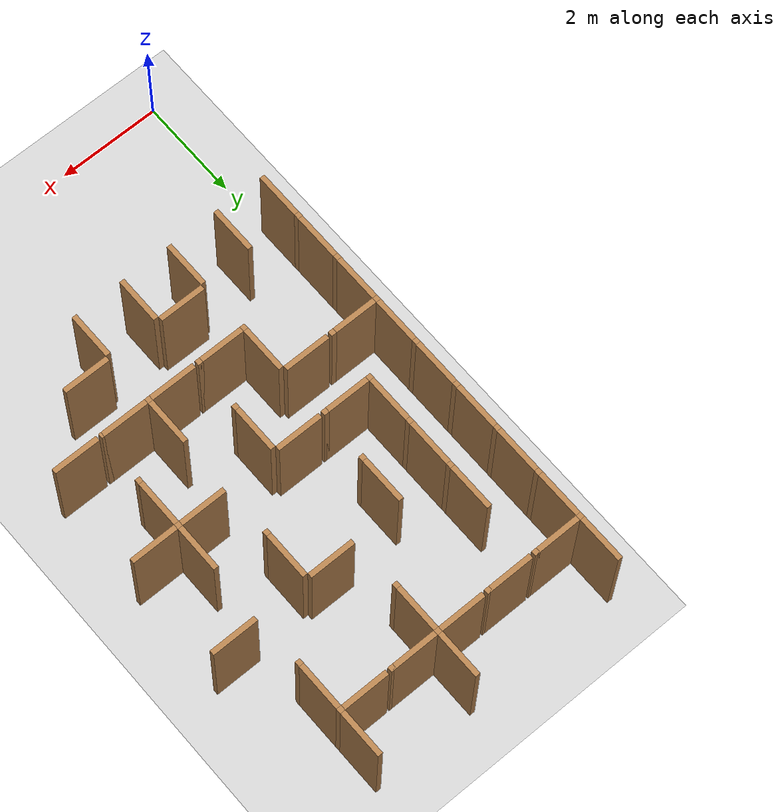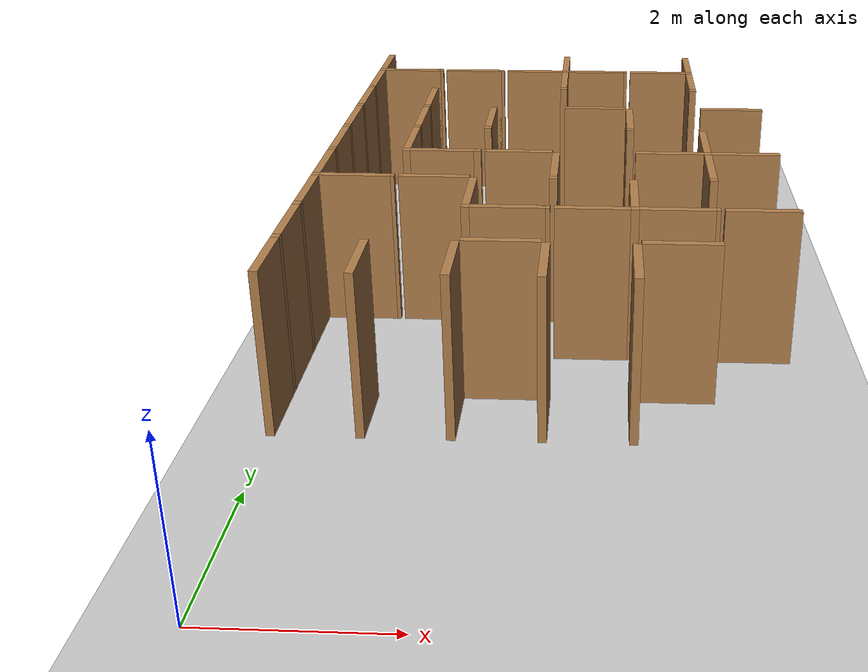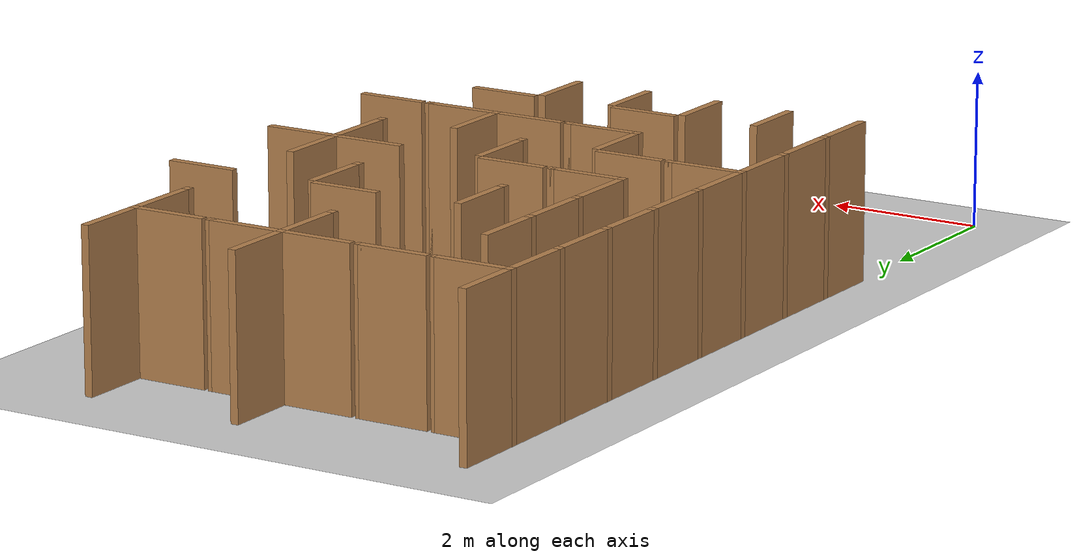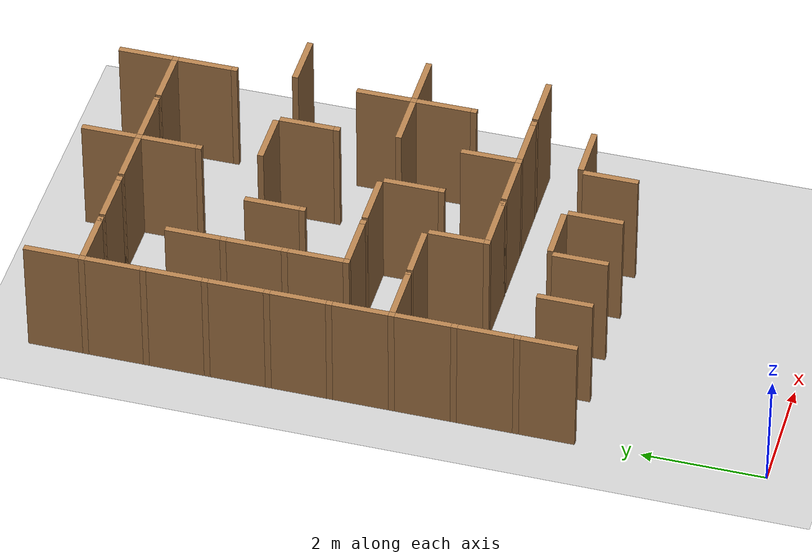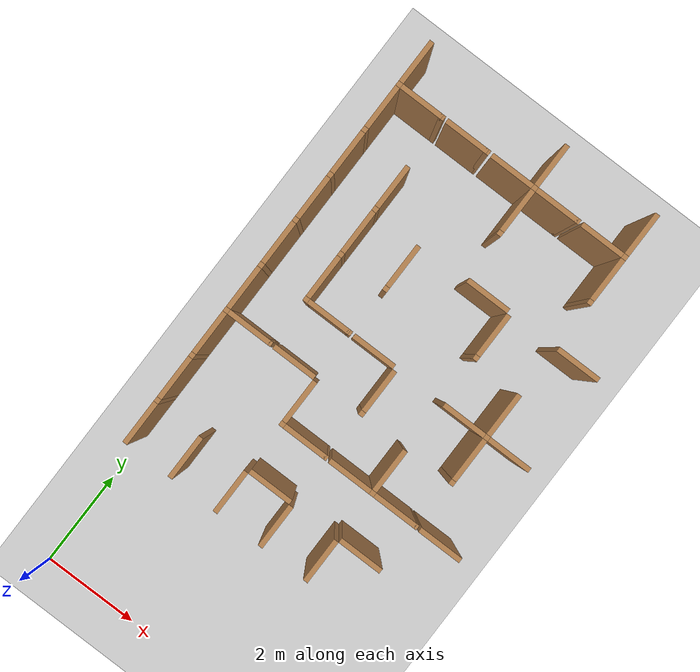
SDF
<sdf version="1.6">
 <world name="default">
  <include><uri>model://sun</uri></include>
  <model name="ground_plane">
   <static>true</static>
   <link name="link">
    <collision name="collision"><geometry><plane><size>12.0 12.0</size></plane></geometry></collision>
    <visual name="visual">
     <cast_shadows>false</cast_shadows>
     <geometry><plane><size>12.0 12.0</size></plane></geometry>
     <material>
      <script><uri>file://media/materials/scripts/gazebo.material</uri><name>Gazebo/Grey</name></script>
     </material>
    </visual>
   </link>
   <pose>6.0 6.0 0 0 0 0</pose>
  </model>
  <model name="vwall_3_0">
   <pose>0.0 3.5 1.0 0 0 0</pose>
   <link name="link">
    <collision name="collision"><geometry><box><size>0.1 0.9 2</size></box></geometry></collision>
    <visual name="visual">
     <geometry><box><size>0.1 0.9 2</size></box></geometry>
     <material>
      <script><uri>file://media/materials/scripts/gazebo.material</uri><name>Gazebo/Wood</name></script>
     </material>
    </visual>
   </link>
  </model>
  <model name="vwall_3_1">
   <pose>1.0 3.5 1.0 0 0 0</pose>
   <link name="link">
    <collision name="collision"><geometry><box><size>0.1 0.9 2</size></box></geometry></collision>
    <visual name="visual">
     <geometry><box><size>0.1 0.9 2</size></box></geometry>
     <material>
      <script><uri>file://media/materials/scripts/gazebo.material</uri><name>Gazebo/Wood</name></script>
     </material>
    </visual>
   </link>
  </model>
  <model name="vwall_3_2">
   <pose>2.0 3.5 1.0 0 0 0</pose>
   <link name="link">
    <collision name="collision"><geometry><box><size>0.1 0.9 2</size></box></geometry></collision>
    <visual name="visual">
     <geometry><box><size>0.1 0.9 2</size></box></geometry>
     <material>
      <script><uri>file://media/materials/scripts/gazebo.material</uri><name>Gazebo/Wood</name></script>
     </material>
    </visual>
   </link>
  </model>
  <model name="vwall_3_3">
   <pose>3.0 3.5 1.0 0 0 0</pose>
   <link name="link">
    <collision name="collision"><geometry><box><size>0.1 0.9 2</size></box></geometry></collision>
    <visual name="visual">
     <geometry><box><size>0.1 0.9 2</size></box></geometry>
     <material>
      <script><uri>file://media/materials/scripts/gazebo.material</uri><name>Gazebo/Wood</name></script>
     </material>
    </visual>
   </link>
  </model>
  <model name="vwall_3_4">
   <pose>4.0 3.5 1.0 0 0 0</pose>
   <link name="link">
    <collision name="collision"><geometry><box><size>0.1 0.9 2</size></box></geometry></collision>
    <visual name="visual">
     <geometry><box><size>0.1 0.9 2</size></box></geometry>
     <material>
      <script><uri>file://media/materials/scripts/gazebo.material</uri><name>Gazebo/Wood</name></script>
     </material>
    </visual>
   </link>
  </model>
  <model name="vwall_4_0">
   <pose>0.0 4.5 1.0 0 0 0</pose>
   <link name="link">
    <collision name="collision"><geometry><box><size>0.1 0.9 2</size></box></geometry></collision>
    <visual name="visual">
     <geometry><box><size>0.1 0.9 2</size></box></geometry>
     <material>
      <script><uri>file://media/materials/scripts/gazebo.material</uri><name>Gazebo/Wood</name></script>
     </material>
    </visual>
   </link>
  </model>
  <model name="joint_0.0_4.0">
   <pose>0.0 4.0 1.0 0 0 0</pose>
   <link name="link">
    <collision name="collision"><geometry><box><size>0.1 0.1 2</size></box></geometry></collision>
    <visual name="visual">
     <geometry><box><size>0.1 0.1 2</size></box></geometry>
     <material>
      <script><uri>file://media/materials/scripts/gazebo.material</uri><name>Gazebo/Wood</name></script>
     </material>
    </visual>
   </link>
  </model>
  <model name="vwall_5_0">
   <pose>0.0 5.5 1.0 0 0 0</pose>
   <link name="link">
    <collision name="collision"><geometry><box><size>0.1 0.9 2</size></box></geometry></collision>
    <visual name="visual">
     <geometry><box><size>0.1 0.9 2</size></box></geometry>
     <material>
      <script><uri>file://media/materials/scripts/gazebo.material</uri><name>Gazebo/Wood</name></script>
     </material>
    </visual>
   </link>
  </model>
  <model name="joint_0.0_5.0">
   <pose>0.0 5.0 1.0 0 0 0</pose>
   <link name="link">
    <collision name="collision"><geometry><box><size>0.1 0.1 2</size></box></geometry></collision>
    <visual name="visual">
     <geometry><box><size>0.1 0.1 2</size></box></geometry>
     <material>
      <script><uri>file://media/materials/scripts/gazebo.material</uri><name>Gazebo/Wood</name></script>
     </material>
    </visual>
   </link>
  </model>
  <model name="vwall_5_2">
   <pose>2.0 5.5 1.0 0 0 0</pose>
   <link name="link">
    <collision name="collision"><geometry><box><size>0.1 0.9 2</size></box></geometry></collision>
    <visual name="visual">
     <geometry><box><size>0.1 0.9 2</size></box></geometry>
     <material>
      <script><uri>file://media/materials/scripts/gazebo.material</uri><name>Gazebo/Wood</name></script>
     </material>
    </visual>
   </link>
  </model>
  <model name="joint_2.0_5.0">
   <pose>2.0 5.0 1.0 0 0 0</pose>
   <link name="link">
    <collision name="collision"><geometry><box><size>0.1 0.1 2</size></box></geometry></collision>
    <visual name="visual">
     <geometry><box><size>0.1 0.1 2</size></box></geometry>
     <material>
      <script><uri>file://media/materials/scripts/gazebo.material</uri><name>Gazebo/Wood</name></script>
     </material>
    </visual>
   </link>
  </model>
  <model name="vwall_5_4">
   <pose>4.0 5.5 1.0 0 0 0</pose>
   <link name="link">
    <collision name="collision"><geometry><box><size>0.1 0.9 2</size></box></geometry></collision>
    <visual name="visual">
     <geometry><box><size>0.1 0.9 2</size></box></geometry>
     <material>
      <script><uri>file://media/materials/scripts/gazebo.material</uri><name>Gazebo/Wood</name></script>
     </material>
    </visual>
   </link>
  </model>
  <model name="joint_4.0_5.0">
   <pose>4.0 5.0 1.0 0 0 0</pose>
   <link name="link">
    <collision name="collision"><geometry><box><size>0.1 0.1 2</size></box></geometry></collision>
    <visual name="visual">
     <geometry><box><size>0.1 0.1 2</size></box></geometry>
     <material>
      <script><uri>file://media/materials/scripts/gazebo.material</uri><name>Gazebo/Wood</name></script>
     </material>
    </visual>
   </link>
  </model>
  <model name="vwall_6_0">
   <pose>0.0 6.5 1.0 0 0 0</pose>
   <link name="link">
    <collision name="collision"><geometry><box><size>0.1 0.9 2</size></box></geometry></collision>
    <visual name="visual">
     <geometry><box><size>0.1 0.9 2</size></box></geometry>
     <material>
      <script><uri>file://media/materials/scripts/gazebo.material</uri><name>Gazebo/Wood</name></script>
     </material>
    </visual>
   </link>
  </model>
  <model name="joint_0.0_6.0">
   <pose>0.0 6.0 1.0 0 0 0</pose>
   <link name="link">
    <collision name="collision"><geometry><box><size>0.1 0.1 2</size></box></geometry></collision>
    <visual name="visual">
     <geometry><box><size>0.1 0.1 2</size></box></geometry>
     <material>
      <script><uri>file://media/materials/scripts/gazebo.material</uri><name>Gazebo/Wood</name></script>
     </material>
    </visual>
   </link>
  </model>
  <model name="vwall_6_3">
   <pose>3.0 6.5 1.0 0 0 0</pose>
   <link name="link">
    <collision name="collision"><geometry><box><size>0.1 0.9 2</size></box></geometry></collision>
    <visual name="visual">
     <geometry><box><size>0.1 0.9 2</size></box></geometry>
     <material>
      <script><uri>file://media/materials/scripts/gazebo.material</uri><name>Gazebo/Wood</name></script>
     </material>
    </visual>
   </link>
  </model>
  <model name="joint_3.0_6.0">
   <pose>3.0 6.0 1.0 0 0 0</pose>
   <link name="link">
    <collision name="collision"><geometry><box><size>0.1 0.1 2</size></box></geometry></collision>
    <visual name="visual">
     <geometry><box><size>0.1 0.1 2</size></box></geometry>
     <material>
      <script><uri>file://media/materials/scripts/gazebo.material</uri><name>Gazebo/Wood</name></script>
     </material>
    </visual>
   </link>
  </model>
  <model name="vwall_6_5">
   <pose>5.0 6.5 1.0 0 0 0</pose>
   <link name="link">
    <collision name="collision"><geometry><box><size>0.1 0.9 2</size></box></geometry></collision>
    <visual name="visual">
     <geometry><box><size>0.1 0.9 2</size></box></geometry>
     <material>
      <script><uri>file://media/materials/scripts/gazebo.material</uri><name>Gazebo/Wood</name></script>
     </material>
    </visual>
   </link>
  </model>
  <model name="joint_5.0_6.0">
   <pose>5.0 6.0 1.0 0 0 0</pose>
   <link name="link">
    <collision name="collision"><geometry><box><size>0.1 0.1 2</size></box></geometry></collision>
    <visual name="visual">
     <geometry><box><size>0.1 0.1 2</size></box></geometry>
     <material>
      <script><uri>file://media/materials/scripts/gazebo.material</uri><name>Gazebo/Wood</name></script>
     </material>
    </visual>
   </link>
  </model>
  <model name="vwall_7_0">
   <pose>0.0 7.5 1.0 0 0 0</pose>
   <link name="link">
    <collision name="collision"><geometry><box><size>0.1 0.9 2</size></box></geometry></collision>
    <visual name="visual">
     <geometry><box><size>0.1 0.9 2</size></box></geometry>
     <material>
      <script><uri>file://media/materials/scripts/gazebo.material</uri><name>Gazebo/Wood</name></script>
     </material>
    </visual>
   </link>
  </model>
  <model name="joint_0.0_7.0">
   <pose>0.0 7.0 1.0 0 0 0</pose>
   <link name="link">
    <collision name="collision"><geometry><box><size>0.1 0.1 2</size></box></geometry></collision>
    <visual name="visual">
     <geometry><box><size>0.1 0.1 2</size></box></geometry>
     <material>
      <script><uri>file://media/materials/scripts/gazebo.material</uri><name>Gazebo/Wood</name></script>
     </material>
    </visual>
   </link>
  </model>
  <model name="vwall_7_1">
   <pose>1.0 7.5 1.0 0 0 0</pose>
   <link name="link">
    <collision name="collision"><geometry><box><size>0.1 0.9 2</size></box></geometry></collision>
    <visual name="visual">
     <geometry><box><size>0.1 0.9 2</size></box></geometry>
     <material>
      <script><uri>file://media/materials/scripts/gazebo.material</uri><name>Gazebo/Wood</name></script>
     </material>
    </visual>
   </link>
  </model>
  <model name="joint_1.0_7.0">
   <pose>1.0 7.0 1.0 0 0 0</pose>
   <link name="link">
    <collision name="collision"><geometry><box><size>0.1 0.1 2</size></box></geometry></collision>
    <visual name="visual">
     <geometry><box><size>0.1 0.1 2</size></box></geometry>
     <material>
      <script><uri>file://media/materials/scripts/gazebo.material</uri><name>Gazebo/Wood</name></script>
     </material>
    </visual>
   </link>
  </model>
  <model name="vwall_7_5">
   <pose>5.0 7.5 1.0 0 0 0</pose>
   <link name="link">
    <collision name="collision"><geometry><box><size>0.1 0.9 2</size></box></geometry></collision>
    <visual name="visual">
     <geometry><box><size>0.1 0.9 2</size></box></geometry>
     <material>
      <script><uri>file://media/materials/scripts/gazebo.material</uri><name>Gazebo/Wood</name></script>
     </material>
    </visual>
   </link>
  </model>
  <model name="joint_5.0_7.0">
   <pose>5.0 7.0 1.0 0 0 0</pose>
   <link name="link">
    <collision name="collision"><geometry><box><size>0.1 0.1 2</size></box></geometry></collision>
    <visual name="visual">
     <geometry><box><size>0.1 0.1 2</size></box></geometry>
     <material>
      <script><uri>file://media/materials/scripts/gazebo.material</uri><name>Gazebo/Wood</name></script>
     </material>
    </visual>
   </link>
  </model>
  <model name="vwall_8_0">
   <pose>0.0 8.5 1.0 0 0 0</pose>
   <link name="link">
    <collision name="collision"><geometry><box><size>0.1 0.9 2</size></box></geometry></collision>
    <visual name="visual">
     <geometry><box><size>0.1 0.9 2</size></box></geometry>
     <material>
      <script><uri>file://media/materials/scripts/gazebo.material</uri><name>Gazebo/Wood</name></script>
     </material>
    </visual>
   </link>
  </model>
  <model name="joint_0.0_8.0">
   <pose>0.0 8.0 1.0 0 0 0</pose>
   <link name="link">
    <collision name="collision"><geometry><box><size>0.1 0.1 2</size></box></geometry></collision>
    <visual name="visual">
     <geometry><box><size>0.1 0.1 2</size></box></geometry>
     <material>
      <script><uri>file://media/materials/scripts/gazebo.material</uri><name>Gazebo/Wood</name></script>
     </material>
    </visual>
   </link>
  </model>
  <model name="vwall_8_1">
   <pose>1.0 8.5 1.0 0 0 0</pose>
   <link name="link">
    <collision name="collision"><geometry><box><size>0.1 0.9 2</size></box></geometry></collision>
    <visual name="visual">
     <geometry><box><size>0.1 0.9 2</size></box></geometry>
     <material>
      <script><uri>file://media/materials/scripts/gazebo.material</uri><name>Gazebo/Wood</name></script>
     </material>
    </visual>
   </link>
  </model>
  <model name="joint_1.0_8.0">
   <pose>1.0 8.0 1.0 0 0 0</pose>
   <link name="link">
    <collision name="collision"><geometry><box><size>0.1 0.1 2</size></box></geometry></collision>
    <visual name="visual">
     <geometry><box><size>0.1 0.1 2</size></box></geometry>
     <material>
      <script><uri>file://media/materials/scripts/gazebo.material</uri><name>Gazebo/Wood</name></script>
     </material>
    </visual>
   </link>
  </model>
  <model name="vwall_8_2">
   <pose>2.0 8.5 1.0 0 0 0</pose>
   <link name="link">
    <collision name="collision"><geometry><box><size>0.1 0.9 2</size></box></geometry></collision>
    <visual name="visual">
     <geometry><box><size>0.1 0.9 2</size></box></geometry>
     <material>
      <script><uri>file://media/materials/scripts/gazebo.material</uri><name>Gazebo/Wood</name></script>
     </material>
    </visual>
   </link>
  </model>
  <model name="joint_2.0_8.0">
   <pose>2.0 8.0 1.0 0 0 0</pose>
   <link name="link">
    <collision name="collision"><geometry><box><size>0.1 0.1 2</size></box></geometry></collision>
    <visual name="visual">
     <geometry><box><size>0.1 0.1 2</size></box></geometry>
     <material>
      <script><uri>file://media/materials/scripts/gazebo.material</uri><name>Gazebo/Wood</name></script>
     </material>
    </visual>
   </link>
  </model>
  <model name="vwall_8_4">
   <pose>4.0 8.5 1.0 0 0 0</pose>
   <link name="link">
    <collision name="collision"><geometry><box><size>0.1 0.9 2</size></box></geometry></collision>
    <visual name="visual">
     <geometry><box><size>0.1 0.9 2</size></box></geometry>
     <material>
      <script><uri>file://media/materials/scripts/gazebo.material</uri><name>Gazebo/Wood</name></script>
     </material>
    </visual>
   </link>
  </model>
  <model name="joint_4.0_8.0">
   <pose>4.0 8.0 1.0 0 0 0</pose>
   <link name="link">
    <collision name="collision"><geometry><box><size>0.1 0.1 2</size></box></geometry></collision>
    <visual name="visual">
     <geometry><box><size>0.1 0.1 2</size></box></geometry>
     <material>
      <script><uri>file://media/materials/scripts/gazebo.material</uri><name>Gazebo/Wood</name></script>
     </material>
    </visual>
   </link>
  </model>
  <model name="vwall_9_0">
   <pose>0.0 9.5 1.0 0 0 0</pose>
   <link name="link">
    <collision name="collision"><geometry><box><size>0.1 0.9 2</size></box></geometry></collision>
    <visual name="visual">
     <geometry><box><size>0.1 0.9 2</size></box></geometry>
     <material>
      <script><uri>file://media/materials/scripts/gazebo.material</uri><name>Gazebo/Wood</name></script>
     </material>
    </visual>
   </link>
  </model>
  <model name="joint_0.0_9.0">
   <pose>0.0 9.0 1.0 0 0 0</pose>
   <link name="link">
    <collision name="collision"><geometry><box><size>0.1 0.1 2</size></box></geometry></collision>
    <visual name="visual">
     <geometry><box><size>0.1 0.1 2</size></box></geometry>
     <material>
      <script><uri>file://media/materials/scripts/gazebo.material</uri><name>Gazebo/Wood</name></script>
     </material>
    </visual>
   </link>
  </model>
  <model name="vwall_9_1">
   <pose>1.0 9.5 1.0 0 0 0</pose>
   <link name="link">
    <collision name="collision"><geometry><box><size>0.1 0.9 2</size></box></geometry></collision>
    <visual name="visual">
     <geometry><box><size>0.1 0.9 2</size></box></geometry>
     <material>
      <script><uri>file://media/materials/scripts/gazebo.material</uri><name>Gazebo/Wood</name></script>
     </material>
    </visual>
   </link>
  </model>
  <model name="joint_1.0_9.0">
   <pose>1.0 9.0 1.0 0 0 0</pose>
   <link name="link">
    <collision name="collision"><geometry><box><size>0.1 0.1 2</size></box></geometry></collision>
    <visual name="visual">
     <geometry><box><size>0.1 0.1 2</size></box></geometry>
     <material>
      <script><uri>file://media/materials/scripts/gazebo.material</uri><name>Gazebo/Wood</name></script>
     </material>
    </visual>
   </link>
  </model>
  <model name="vwall_10_0">
   <pose>0.0 10.5 1.0 0 0 0</pose>
   <link name="link">
    <collision name="collision"><geometry><box><size>0.1 0.9 2</size></box></geometry></collision>
    <visual name="visual">
     <geometry><box><size>0.1 0.9 2</size></box></geometry>
     <material>
      <script><uri>file://media/materials/scripts/gazebo.material</uri><name>Gazebo/Wood</name></script>
     </material>
    </visual>
   </link>
  </model>
  <model name="joint_0.0_10.0">
   <pose>0.0 10.0 1.0 0 0 0</pose>
   <link name="link">
    <collision name="collision"><geometry><box><size>0.1 0.1 2</size></box></geometry></collision>
    <visual name="visual">
     <geometry><box><size>0.1 0.1 2</size></box></geometry>
     <material>
      <script><uri>file://media/materials/scripts/gazebo.material</uri><name>Gazebo/Wood</name></script>
     </material>
    </visual>
   </link>
  </model>
  <model name="vwall_10_3">
   <pose>3.0 10.5 1.0 0 0 0</pose>
   <link name="link">
    <collision name="collision"><geometry><box><size>0.1 0.9 2</size></box></geometry></collision>
    <visual name="visual">
     <geometry><box><size>0.1 0.9 2</size></box></geometry>
     <material>
      <script><uri>file://media/materials/scripts/gazebo.material</uri><name>Gazebo/Wood</name></script>
     </material>
    </visual>
   </link>
  </model>
  <model name="joint_3.0_10.0">
   <pose>3.0 10.0 1.0 0 0 0</pose>
   <link name="link">
    <collision name="collision"><geometry><box><size>0.1 0.1 2</size></box></geometry></collision>
    <visual name="visual">
     <geometry><box><size>0.1 0.1 2</size></box></geometry>
     <material>
      <script><uri>file://media/materials/scripts/gazebo.material</uri><name>Gazebo/Wood</name></script>
     </material>
    </visual>
   </link>
  </model>
  <model name="vwall_10_5">
   <pose>5.0 10.5 1.0 0 0 0</pose>
   <link name="link">
    <collision name="collision"><geometry><box><size>0.1 0.9 2</size></box></geometry></collision>
    <visual name="visual">
     <geometry><box><size>0.1 0.9 2</size></box></geometry>
     <material>
      <script><uri>file://media/materials/scripts/gazebo.material</uri><name>Gazebo/Wood</name></script>
     </material>
    </visual>
   </link>
  </model>
  <model name="joint_5.0_10.0">
   <pose>5.0 10.0 1.0 0 0 0</pose>
   <link name="link">
    <collision name="collision"><geometry><box><size>0.1 0.1 2</size></box></geometry></collision>
    <visual name="visual">
     <geometry><box><size>0.1 0.1 2</size></box></geometry>
     <material>
      <script><uri>file://media/materials/scripts/gazebo.material</uri><name>Gazebo/Wood</name></script>
     </material>
    </visual>
   </link>
  </model>
  <model name="vwall_11_0">
   <pose>0.0 11.5 1.0 0 0 0</pose>
   <link name="link">
    <collision name="collision"><geometry><box><size>0.1 0.9 2</size></box></geometry></collision>
    <visual name="visual">
     <geometry><box><size>0.1 0.9 2</size></box></geometry>
     <material>
      <script><uri>file://media/materials/scripts/gazebo.material</uri><name>Gazebo/Wood</name></script>
     </material>
    </visual>
   </link>
  </model>
  <model name="joint_0.0_11.0">
   <pose>0.0 11.0 1.0 0 0 0</pose>
   <link name="link">
    <collision name="collision"><geometry><box><size>0.1 0.1 2</size></box></geometry></collision>
    <visual name="visual">
     <geometry><box><size>0.1 0.1 2</size></box></geometry>
     <material>
      <script><uri>file://media/materials/scripts/gazebo.material</uri><name>Gazebo/Wood</name></script>
     </material>
    </visual>
   </link>
  </model>
  <model name="vwall_11_3">
   <pose>3.0 11.5 1.0 0 0 0</pose>
   <link name="link">
    <collision name="collision"><geometry><box><size>0.1 0.9 2</size></box></geometry></collision>
    <visual name="visual">
     <geometry><box><size>0.1 0.9 2</size></box></geometry>
     <material>
      <script><uri>file://media/materials/scripts/gazebo.material</uri><name>Gazebo/Wood</name></script>
     </material>
    </visual>
   </link>
  </model>
  <model name="joint_3.0_11.0">
   <pose>3.0 11.0 1.0 0 0 0</pose>
   <link name="link">
    <collision name="collision"><geometry><box><size>0.1 0.1 2</size></box></geometry></collision>
    <visual name="visual">
     <geometry><box><size>0.1 0.1 2</size></box></geometry>
     <material>
      <script><uri>file://media/materials/scripts/gazebo.material</uri><name>Gazebo/Wood</name></script>
     </material>
    </visual>
   </link>
  </model>
  <model name="vwall_11_5">
   <pose>5.0 11.5 1.0 0 0 0</pose>
   <link name="link">
    <collision name="collision"><geometry><box><size>0.1 0.9 2</size></box></geometry></collision>
    <visual name="visual">
     <geometry><box><size>0.1 0.9 2</size></box></geometry>
     <material>
      <script><uri>file://media/materials/scripts/gazebo.material</uri><name>Gazebo/Wood</name></script>
     </material>
    </visual>
   </link>
  </model>
  <model name="joint_5.0_11.0">
   <pose>5.0 11.0 1.0 0 0 0</pose>
   <link name="link">
    <collision name="collision"><geometry><box><size>0.1 0.1 2</size></box></geometry></collision>
    <visual name="visual">
     <geometry><box><size>0.1 0.1 2</size></box></geometry>
     <material>
      <script><uri>file://media/materials/scripts/gazebo.material</uri><name>Gazebo/Wood</name></script>
     </material>
    </visual>
   </link>
  </model>
  <model name="hwall_4_2">
   <pose>2.5 4.0 1.0 0 0 0</pose>
   <link name="link">
    <collision name="collision"><geometry><box><size>0.9 0.1 2</size></box></geometry></collision>
    <visual name="visual">
     <geometry><box><size>0.9 0.1 2</size></box></geometry>
     <material>
      <script><uri>file://media/materials/scripts/gazebo.material</uri><name>Gazebo/Wood</name></script>
     </material>
    </visual>
   </link>
  </model>
  <model name="hwall_4_4">
   <pose>4.5 4.0 1.0 0 0 0</pose>
   <link name="link">
    <collision name="collision"><geometry><box><size>0.9 0.1 2</size></box></geometry></collision>
    <visual name="visual">
     <geometry><box><size>0.9 0.1 2</size></box></geometry>
     <material>
      <script><uri>file://media/materials/scripts/gazebo.material</uri><name>Gazebo/Wood</name></script>
     </material>
    </visual>
   </link>
  </model>
  <model name="hwall_5_2">
   <pose>2.5 5.0 1.0 0 0 0</pose>
   <link name="link">
    <collision name="collision"><geometry><box><size>0.9 0.1 2</size></box></geometry></collision>
    <visual name="visual">
     <geometry><box><size>0.9 0.1 2</size></box></geometry>
     <material>
      <script><uri>file://media/materials/scripts/gazebo.material</uri><name>Gazebo/Wood</name></script>
     </material>
    </visual>
   </link>
  </model>
  <model name="joint_2.95_5.0">
   <pose>2.95 5.0 1.0 0 0 0</pose>
   <link name="link">
    <collision name="collision"><geometry><box><size>0.1 0.1 2</size></box></geometry></collision>
    <visual name="visual">
     <geometry><box><size>0.1 0.1 2</size></box></geometry>
     <material>
      <script><uri>file://media/materials/scripts/gazebo.material</uri><name>Gazebo/Wood</name></script>
     </material>
    </visual>
   </link>
  </model>
  <model name="hwall_5_3">
   <pose>3.5 5.0 1.0 0 0 0</pose>
   <link name="link">
    <collision name="collision"><geometry><box><size>0.9 0.1 2</size></box></geometry></collision>
    <visual name="visual">
     <geometry><box><size>0.9 0.1 2</size></box></geometry>
     <material>
      <script><uri>file://media/materials/scripts/gazebo.material</uri><name>Gazebo/Wood</name></script>
     </material>
    </visual>
   </link>
  </model>
  <model name="hwall_5_4">
   <pose>4.5 5.0 1.0 0 0 0</pose>
   <link name="link">
    <collision name="collision"><geometry><box><size>0.9 0.1 2</size></box></geometry></collision>
    <visual name="visual">
     <geometry><box><size>0.9 0.1 2</size></box></geometry>
     <material>
      <script><uri>file://media/materials/scripts/gazebo.material</uri><name>Gazebo/Wood</name></script>
     </material>
    </visual>
   </link>
  </model>
  <model name="joint_4.95_5.0">
   <pose>4.95 5.0 1.0 0 0 0</pose>
   <link name="link">
    <collision name="collision"><geometry><box><size>0.1 0.1 2</size></box></geometry></collision>
    <visual name="visual">
     <geometry><box><size>0.1 0.1 2</size></box></geometry>
     <material>
      <script><uri>file://media/materials/scripts/gazebo.material</uri><name>Gazebo/Wood</name></script>
     </material>
    </visual>
   </link>
  </model>
  <model name="hwall_5_5">
   <pose>5.5 5.0 1.0 0 0 0</pose>
   <link name="link">
    <collision name="collision"><geometry><box><size>0.9 0.1 2</size></box></geometry></collision>
    <visual name="visual">
     <geometry><box><size>0.9 0.1 2</size></box></geometry>
     <material>
      <script><uri>file://media/materials/scripts/gazebo.material</uri><name>Gazebo/Wood</name></script>
     </material>
    </visual>
   </link>
  </model>
  <model name="hwall_6_0">
   <pose>0.5 6.0 1.0 0 0 0</pose>
   <link name="link">
    <collision name="collision"><geometry><box><size>0.9 0.1 2</size></box></geometry></collision>
    <visual name="visual">
     <geometry><box><size>0.9 0.1 2</size></box></geometry>
     <material>
      <script><uri>file://media/materials/scripts/gazebo.material</uri><name>Gazebo/Wood</name></script>
     </material>
    </visual>
   </link>
  </model>
  <model name="joint_0.95_6.0">
   <pose>0.95 6.0 1.0 0 0 0</pose>
   <link name="link">
    <collision name="collision"><geometry><box><size>0.1 0.1 2</size></box></geometry></collision>
    <visual name="visual">
     <geometry><box><size>0.1 0.1 2</size></box></geometry>
     <material>
      <script><uri>file://media/materials/scripts/gazebo.material</uri><name>Gazebo/Wood</name></script>
     </material>
    </visual>
   </link>
  </model>
  <model name="hwall_6_1">
   <pose>1.5 6.0 1.0 0 0 0</pose>
   <link name="link">
    <collision name="collision"><geometry><box><size>0.9 0.1 2</size></box></geometry></collision>
    <visual name="visual">
     <geometry><box><size>0.9 0.1 2</size></box></geometry>
     <material>
      <script><uri>file://media/materials/scripts/gazebo.material</uri><name>Gazebo/Wood</name></script>
     </material>
    </visual>
   </link>
  </model>
  <model name="hwall_7_1">
   <pose>1.5 7.0 1.0 0 0 0</pose>
   <link name="link">
    <collision name="collision"><geometry><box><size>0.9 0.1 2</size></box></geometry></collision>
    <visual name="visual">
     <geometry><box><size>0.9 0.1 2</size></box></geometry>
     <material>
      <script><uri>file://media/materials/scripts/gazebo.material</uri><name>Gazebo/Wood</name></script>
     </material>
    </visual>
   </link>
  </model>
  <model name="joint_1.95_7.0">
   <pose>1.95 7.0 1.0 0 0 0</pose>
   <link name="link">
    <collision name="collision"><geometry><box><size>0.1 0.1 2</size></box></geometry></collision>
    <visual name="visual">
     <geometry><box><size>0.1 0.1 2</size></box></geometry>
     <material>
      <script><uri>file://media/materials/scripts/gazebo.material</uri><name>Gazebo/Wood</name></script>
     </material>
    </visual>
   </link>
  </model>
  <model name="hwall_7_2">
   <pose>2.5 7.0 1.0 0 0 0</pose>
   <link name="link">
    <collision name="collision"><geometry><box><size>0.9 0.1 2</size></box></geometry></collision>
    <visual name="visual">
     <geometry><box><size>0.9 0.1 2</size></box></geometry>
     <material>
      <script><uri>file://media/materials/scripts/gazebo.material</uri><name>Gazebo/Wood</name></script>
     </material>
    </visual>
   </link>
  </model>
  <model name="hwall_7_4">
   <pose>4.5 7.0 1.0 0 0 0</pose>
   <link name="link">
    <collision name="collision"><geometry><box><size>0.9 0.1 2</size></box></geometry></collision>
    <visual name="visual">
     <geometry><box><size>0.9 0.1 2</size></box></geometry>
     <material>
      <script><uri>file://media/materials/scripts/gazebo.material</uri><name>Gazebo/Wood</name></script>
     </material>
    </visual>
   </link>
  </model>
  <model name="hwall_7_5">
   <pose>5.5 7.0 1.0 0 0 0</pose>
   <link name="link">
    <collision name="collision"><geometry><box><size>0.9 0.1 2</size></box></geometry></collision>
    <visual name="visual">
     <geometry><box><size>0.9 0.1 2</size></box></geometry>
     <material>
      <script><uri>file://media/materials/scripts/gazebo.material</uri><name>Gazebo/Wood</name></script>
     </material>
    </visual>
   </link>
  </model>
  <model name="hwall_9_3">
   <pose>3.5 9.0 1.0 0 0 0</pose>
   <link name="link">
    <collision name="collision"><geometry><box><size>0.9 0.1 2</size></box></geometry></collision>
    <visual name="visual">
     <geometry><box><size>0.9 0.1 2</size></box></geometry>
     <material>
      <script><uri>file://media/materials/scripts/gazebo.material</uri><name>Gazebo/Wood</name></script>
     </material>
    </visual>
   </link>
  </model>
  <model name="hwall_9_5">
   <pose>5.5 9.0 1.0 0 0 0</pose>
   <link name="link">
    <collision name="collision"><geometry><box><size>0.9 0.1 2</size></box></geometry></collision>
    <visual name="visual">
     <geometry><box><size>0.9 0.1 2</size></box></geometry>
     <material>
      <script><uri>file://media/materials/scripts/gazebo.material</uri><name>Gazebo/Wood</name></script>
     </material>
    </visual>
   </link>
  </model>
  <model name="hwall_11_0">
   <pose>0.5 11.0 1.0 0 0 0</pose>
   <link name="link">
    <collision name="collision"><geometry><box><size>0.9 0.1 2</size></box></geometry></collision>
    <visual name="visual">
     <geometry><box><size>0.9 0.1 2</size></box></geometry>
     <material>
      <script><uri>file://media/materials/scripts/gazebo.material</uri><name>Gazebo/Wood</name></script>
     </material>
    </visual>
   </link>
  </model>
  <model name="joint_0.95_11.0">
   <pose>0.95 11.0 1.0 0 0 0</pose>
   <link name="link">
    <collision name="collision"><geometry><box><size>0.1 0.1 2</size></box></geometry></collision>
    <visual name="visual">
     <geometry><box><size>0.1 0.1 2</size></box></geometry>
     <material>
      <script><uri>file://media/materials/scripts/gazebo.material</uri><name>Gazebo/Wood</name></script>
     </material>
    </visual>
   </link>
  </model>
  <model name="hwall_11_1">
   <pose>1.5 11.0 1.0 0 0 0</pose>
   <link name="link">
    <collision name="collision"><geometry><box><size>0.9 0.1 2</size></box></geometry></collision>
    <visual name="visual">
     <geometry><box><size>0.9 0.1 2</size></box></geometry>
     <material>
      <script><uri>file://media/materials/scripts/gazebo.material</uri><name>Gazebo/Wood</name></script>
     </material>
    </visual>
   </link>
  </model>
  <model name="joint_1.95_11.0">
   <pose>1.95 11.0 1.0 0 0 0</pose>
   <link name="link">
    <collision name="collision"><geometry><box><size>0.1 0.1 2</size></box></geometry></collision>
    <visual name="visual">
     <geometry><box><size>0.1 0.1 2</size></box></geometry>
     <material>
      <script><uri>file://media/materials/scripts/gazebo.material</uri><name>Gazebo/Wood</name></script>
     </material>
    </visual>
   </link>
  </model>
  <model name="hwall_11_2">
   <pose>2.5 11.0 1.0 0 0 0</pose>
   <link name="link">
    <collision name="collision"><geometry><box><size>0.9 0.1 2</size></box></geometry></collision>
    <visual name="visual">
     <geometry><box><size>0.9 0.1 2</size></box></geometry>
     <material>
      <script><uri>file://media/materials/scripts/gazebo.material</uri><name>Gazebo/Wood</name></script>
     </material>
    </visual>
   </link>
  </model>
  <model name="hwall_11_3">
   <pose>3.5 11.0 1.0 0 0 0</pose>
   <link name="link">
    <collision name="collision"><geometry><box><size>0.9 0.1 2</size></box></geometry></collision>
    <visual name="visual">
     <geometry><box><size>0.9 0.1 2</size></box></geometry>
     <material>
      <script><uri>file://media/materials/scripts/gazebo.material</uri><name>Gazebo/Wood</name></script>
     </material>
    </visual>
   </link>
  </model>
  <model name="joint_3.95_11.0">
   <pose>3.95 11.0 1.0 0 0 0</pose>
   <link name="link">
    <collision name="collision"><geometry><box><size>0.1 0.1 2</size></box></geometry></collision>
    <visual name="visual">
     <geometry><box><size>0.1 0.1 2</size></box></geometry>
     <material>
      <script><uri>file://media/materials/scripts/gazebo.material</uri><name>Gazebo/Wood</name></script>
     </material>
    </visual>
   </link>
  </model>
  <model name="hwall_11_4">
   <pose>4.5 11.0 1.0 0 0 0</pose>
   <link name="link">
    <collision name="collision"><geometry><box><size>0.9 0.1 2</size></box></geometry></collision>
    <visual name="visual">
     <geometry><box><size>0.9 0.1 2</size></box></geometry>
     <material>
      <script><uri>file://media/materials/scripts/gazebo.material</uri><name>Gazebo/Wood</name></script>
     </material>
    </visual>
   </link>
  </model>
 </world>
</sdf>
